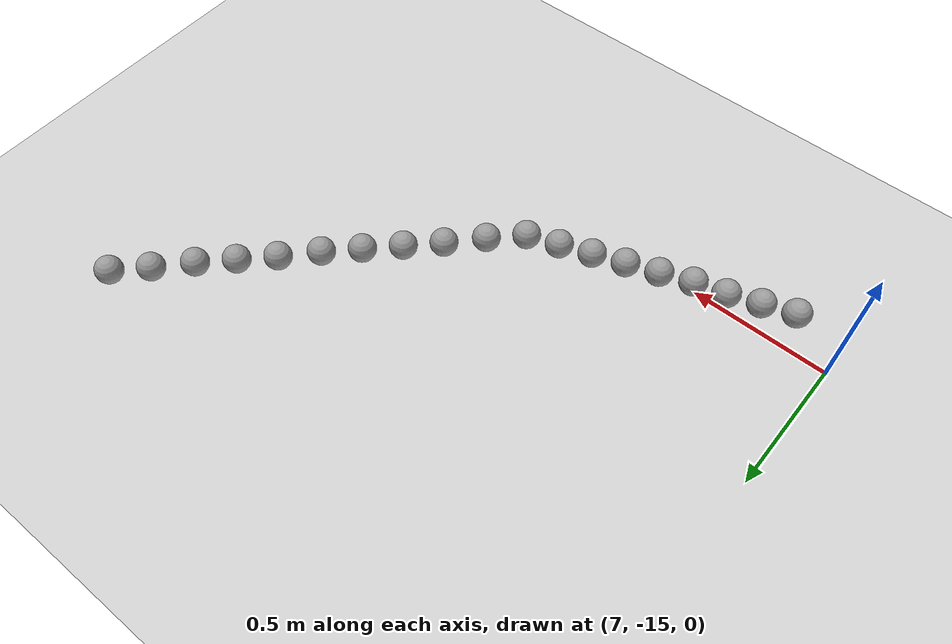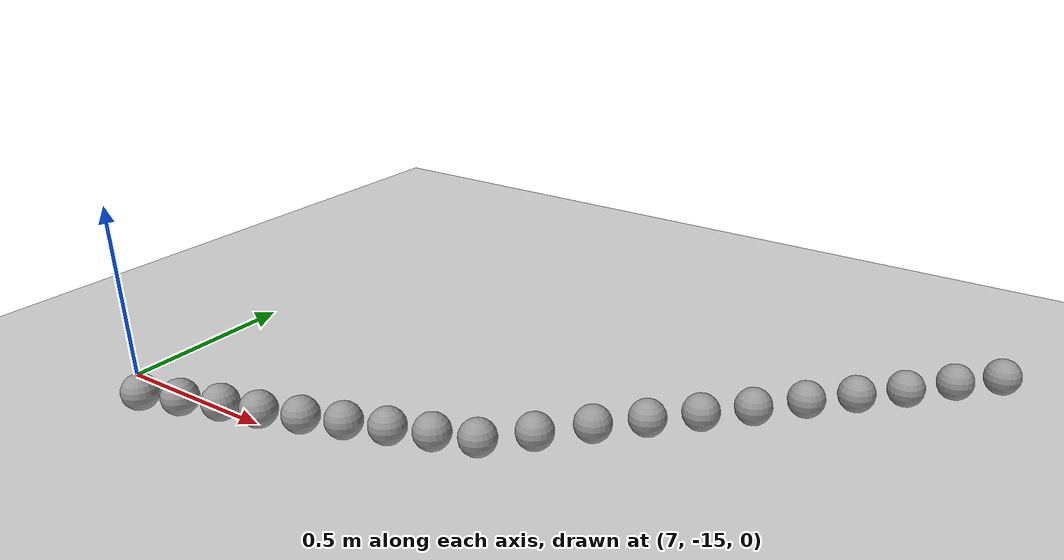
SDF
<sdf version="1.6">
 <world name="default">
  <model name="ground_plane">
   <static>1</static>
   <link name="link">
    <collision name="collision">
     <geometry><plane><normal>0 0 1</normal><size>100 100</size></plane></geometry>
     <surface><friction><ode><mu>100</mu><mu2>50</mu2></ode></friction></surface>
    </collision>
    <visual name="visual">
     <cast_shadows>0</cast_shadows>
     <geometry><plane><normal>0 0 1</normal><size>100 100</size></plane></geometry>
     <material>
      <script><uri>file://media/materials/scripts/gazebo.material</uri><name>Gazebo/Grey</name></script>
     </material>
    </visual>
   </link>
  </model>
  <model name="unit_sphere_0_520">
   <pose>9.070000 -13.770000 0.050000 0 -0 0</pose>
   <link name="link">
    <inertial>
     <mass>1</mass>
     <inertia><ixx>0.1</ixx><ixy>0</ixy><ixz>0</ixz><iyy>0.1</iyy><iyz>0</iyz><izz>0.1</izz></inertia>
    </inertial>
    <collision name="collision"><geometry><sphere><radius>0.050000</radius></sphere></geometry></collision>
    <visual name="visual">
     <geometry><sphere><radius>0.050000</radius></sphere></geometry>
     <material>
      <script><name>Gazebo/Grey</name><uri>file://media/materials/scripts/gazebo.material</uri></script>
     </material>
    </visual>
   </link>
  </model>
  <model name="unit_sphere_0_521">
   <pose>8.970000 -13.870000 0.050000 0 -0 0</pose>
   <link name="link">
    <inertial>
     <mass>1</mass>
     <inertia><ixx>0.1</ixx><ixy>0</ixy><ixz>0</ixz><iyy>0.1</iyy><iyz>0</iyz><izz>0.1</izz></inertia>
    </inertial>
    <collision name="collision"><geometry><sphere><radius>0.050000</radius></sphere></geometry></collision>
    <visual name="visual">
     <geometry><sphere><radius>0.050000</radius></sphere></geometry>
     <material>
      <script><name>Gazebo/Grey</name><uri>file://media/materials/scripts/gazebo.material</uri></script>
     </material>
    </visual>
   </link>
  </model>
  <model name="unit_sphere_0_522">
   <pose>8.870000 -13.980000 0.050000 0 -0 0</pose>
   <link name="link">
    <inertial>
     <mass>1</mass>
     <inertia><ixx>0.1</ixx><ixy>0</ixy><ixz>0</ixz><iyy>0.1</iyy><iyz>0</iyz><izz>0.1</izz></inertia>
    </inertial>
    <collision name="collision"><geometry><sphere><radius>0.050000</radius></sphere></geometry></collision>
    <visual name="visual">
     <geometry><sphere><radius>0.050000</radius></sphere></geometry>
     <material>
      <script><name>Gazebo/Grey</name><uri>file://media/materials/scripts/gazebo.material</uri></script>
     </material>
    </visual>
   </link>
  </model>
  <model name="unit_sphere_0_523">
   <pose>8.770000 -14.080000 0.050000 0 -0 0</pose>
   <link name="link">
    <inertial>
     <mass>1</mass>
     <inertia><ixx>0.1</ixx><ixy>0</ixy><ixz>0</ixz><iyy>0.1</iyy><iyz>0</iyz><izz>0.1</izz></inertia>
    </inertial>
    <collision name="collision"><geometry><sphere><radius>0.050000</radius></sphere></geometry></collision>
    <visual name="visual">
     <geometry><sphere><radius>0.050000</radius></sphere></geometry>
     <material>
      <script><name>Gazebo/Grey</name><uri>file://media/materials/scripts/gazebo.material</uri></script>
     </material>
    </visual>
   </link>
  </model>
  <model name="unit_sphere_0_524">
   <pose>8.670000 -14.180000 0.050000 0 -0 0</pose>
   <link name="link">
    <inertial>
     <mass>1</mass>
     <inertia><ixx>0.1</ixx><ixy>0</ixy><ixz>0</ixz><iyy>0.1</iyy><iyz>0</iyz><izz>0.1</izz></inertia>
    </inertial>
    <collision name="collision"><geometry><sphere><radius>0.050000</radius></sphere></geometry></collision>
    <visual name="visual">
     <geometry><sphere><radius>0.050000</radius></sphere></geometry>
     <material>
      <script><name>Gazebo/Grey</name><uri>file://media/materials/scripts/gazebo.material</uri></script>
     </material>
    </visual>
   </link>
  </model>
  <model name="unit_sphere_0_525">
   <pose>8.570000 -14.290000 0.050000 0 -0 0</pose>
   <link name="link">
    <inertial>
     <mass>1</mass>
     <inertia><ixx>0.1</ixx><ixy>0</ixy><ixz>0</ixz><iyy>0.1</iyy><iyz>0</iyz><izz>0.1</izz></inertia>
    </inertial>
    <collision name="collision"><geometry><sphere><radius>0.050000</radius></sphere></geometry></collision>
    <visual name="visual">
     <geometry><sphere><radius>0.050000</radius></sphere></geometry>
     <material>
      <script><name>Gazebo/Grey</name><uri>file://media/materials/scripts/gazebo.material</uri></script>
     </material>
    </visual>
   </link>
  </model>
  <model name="unit_sphere_0_526">
   <pose>8.470000 -14.390000 0.050000 0 -0 0</pose>
   <link name="link">
    <inertial>
     <mass>1</mass>
     <inertia><ixx>0.1</ixx><ixy>0</ixy><ixz>0</ixz><iyy>0.1</iyy><iyz>0</iyz><izz>0.1</izz></inertia>
    </inertial>
    <collision name="collision"><geometry><sphere><radius>0.050000</radius></sphere></geometry></collision>
    <visual name="visual">
     <geometry><sphere><radius>0.050000</radius></sphere></geometry>
     <material>
      <script><name>Gazebo/Grey</name><uri>file://media/materials/scripts/gazebo.material</uri></script>
     </material>
    </visual>
   </link>
  </model>
  <model name="unit_sphere_0_527">
   <pose>8.370000 -14.490000 0.050000 0 -0 0</pose>
   <link name="link">
    <inertial>
     <mass>1</mass>
     <inertia><ixx>0.1</ixx><ixy>0</ixy><ixz>0</ixz><iyy>0.1</iyy><iyz>0</iyz><izz>0.1</izz></inertia>
    </inertial>
    <collision name="collision"><geometry><sphere><radius>0.050000</radius></sphere></geometry></collision>
    <visual name="visual">
     <geometry><sphere><radius>0.050000</radius></sphere></geometry>
     <material>
      <script><name>Gazebo/Grey</name><uri>file://media/materials/scripts/gazebo.material</uri></script>
     </material>
    </visual>
   </link>
  </model>
  <model name="unit_sphere_0_528">
   <pose>8.270000 -14.590000 0.050000 0 -0 0</pose>
   <link name="link">
    <inertial>
     <mass>1</mass>
     <inertia><ixx>0.1</ixx><ixy>0</ixy><ixz>0</ixz><iyy>0.1</iyy><iyz>0</iyz><izz>0.1</izz></inertia>
    </inertial>
    <collision name="collision"><geometry><sphere><radius>0.050000</radius></sphere></geometry></collision>
    <visual name="visual">
     <geometry><sphere><radius>0.050000</radius></sphere></geometry>
     <material>
      <script><name>Gazebo/Grey</name><uri>file://media/materials/scripts/gazebo.material</uri></script>
     </material>
    </visual>
   </link>
  </model>
  <model name="unit_sphere_0_529">
   <pose>8.170000 -14.700000 0.050000 0 -0 0</pose>
   <link name="link">
    <inertial>
     <mass>1</mass>
     <inertia><ixx>0.1</ixx><ixy>0</ixy><ixz>0</ixz><iyy>0.1</iyy><iyz>0</iyz><izz>0.1</izz></inertia>
    </inertial>
    <collision name="collision"><geometry><sphere><radius>0.050000</radius></sphere></geometry></collision>
    <visual name="visual">
     <geometry><sphere><radius>0.050000</radius></sphere></geometry>
     <material>
      <script><name>Gazebo/Grey</name><uri>file://media/materials/scripts/gazebo.material</uri></script>
     </material>
    </visual>
   </link>
  </model>
  <model name="unit_sphere_0_530">
   <pose>8.070000 -14.800000 0.050000 0 -0 0</pose>
   <link name="link">
    <inertial>
     <mass>1</mass>
     <inertia><ixx>0.1</ixx><ixy>0</ixy><ixz>0</ixz><iyy>0.1</iyy><iyz>0</iyz><izz>0.1</izz></inertia>
    </inertial>
    <collision name="collision"><geometry><sphere><radius>0.050000</radius></sphere></geometry></collision>
    <visual name="visual">
     <geometry><sphere><radius>0.050000</radius></sphere></geometry>
     <material>
      <script><name>Gazebo/Grey</name><uri>file://media/materials/scripts/gazebo.material</uri></script>
     </material>
    </visual>
   </link>
  </model>
  <model name="unit_sphere_0_531">
   <pose>7.959000 -14.840000 0.050000 0 -0 0</pose>
   <link name="link">
    <inertial>
     <mass>1</mass>
     <inertia><ixx>0.1</ixx><ixy>0</ixy><ixz>0</ixz><iyy>0.1</iyy><iyz>0</iyz><izz>0.1</izz></inertia>
    </inertial>
    <collision name="collision"><geometry><sphere><radius>0.050000</radius></sphere></geometry></collision>
    <visual name="visual">
     <geometry><sphere><radius>0.050000</radius></sphere></geometry>
     <material>
      <script><name>Gazebo/Grey</name><uri>file://media/materials/scripts/gazebo.material</uri></script>
     </material>
    </visual>
   </link>
  </model>
  <model name="unit_sphere_0_532">
   <pose>7.848000 -14.880000 0.050000 0 -0 0</pose>
   <link name="link">
    <inertial>
     <mass>1</mass>
     <inertia><ixx>0.1</ixx><ixy>0</ixy><ixz>0</ixz><iyy>0.1</iyy><iyz>0</iyz><izz>0.1</izz></inertia>
    </inertial>
    <collision name="collision"><geometry><sphere><radius>0.050000</radius></sphere></geometry></collision>
    <visual name="visual">
     <geometry><sphere><radius>0.050000</radius></sphere></geometry>
     <material>
      <script><name>Gazebo/Grey</name><uri>file://media/materials/scripts/gazebo.material</uri></script>
     </material>
    </visual>
   </link>
  </model>
  <model name="unit_sphere_0_533">
   <pose>7.737000 -14.920000 0.050000 0 -0 0</pose>
   <link name="link">
    <inertial>
     <mass>1</mass>
     <inertia><ixx>0.1</ixx><ixy>0</ixy><ixz>0</ixz><iyy>0.1</iyy><iyz>0</iyz><izz>0.1</izz></inertia>
    </inertial>
    <collision name="collision"><geometry><sphere><radius>0.050000</radius></sphere></geometry></collision>
    <visual name="visual">
     <geometry><sphere><radius>0.050000</radius></sphere></geometry>
     <material>
      <script><name>Gazebo/Grey</name><uri>file://media/materials/scripts/gazebo.material</uri></script>
     </material>
    </visual>
   </link>
  </model>
  <model name="unit_sphere_0_534">
   <pose>7.626000 -14.960000 0.050000 0 -0 0</pose>
   <link name="link">
    <inertial>
     <mass>1</mass>
     <inertia><ixx>0.1</ixx><ixy>0</ixy><ixz>0</ixz><iyy>0.1</iyy><iyz>0</iyz><izz>0.1</izz></inertia>
    </inertial>
    <collision name="collision"><geometry><sphere><radius>0.050000</radius></sphere></geometry></collision>
    <visual name="visual">
     <geometry><sphere><radius>0.050000</radius></sphere></geometry>
     <material>
      <script><name>Gazebo/Grey</name><uri>file://media/materials/scripts/gazebo.material</uri></script>
     </material>
    </visual>
   </link>
  </model>
  <model name="unit_sphere_0_535">
   <pose>7.515000 -15.000000 0.050000 0 -0 0</pose>
   <link name="link">
    <inertial>
     <mass>1</mass>
     <inertia><ixx>0.1</ixx><ixy>0</ixy><ixz>0</ixz><iyy>0.1</iyy><iyz>0</iyz><izz>0.1</izz></inertia>
    </inertial>
    <collision name="collision"><geometry><sphere><radius>0.050000</radius></sphere></geometry></collision>
    <visual name="visual">
     <geometry><sphere><radius>0.050000</radius></sphere></geometry>
     <material>
      <script><name>Gazebo/Grey</name><uri>file://media/materials/scripts/gazebo.material</uri></script>
     </material>
    </visual>
   </link>
  </model>
  <model name="unit_sphere_0_536">
   <pose>7.404000 -15.030000 0.050000 0 -0 0</pose>
   <link name="link">
    <inertial>
     <mass>1</mass>
     <inertia><ixx>0.1</ixx><ixy>0</ixy><ixz>0</ixz><iyy>0.1</iyy><iyz>0</iyz><izz>0.1</izz></inertia>
    </inertial>
    <collision name="collision"><geometry><sphere><radius>0.050000</radius></sphere></geometry></collision>
    <visual name="visual">
     <geometry><sphere><radius>0.050000</radius></sphere></geometry>
     <material>
      <script><name>Gazebo/Grey</name><uri>file://media/materials/scripts/gazebo.material</uri></script>
     </material>
    </visual>
   </link>
  </model>
  <model name="unit_sphere_0_537">
   <pose>7.293000 -15.070000 0.050000 0 -0 0</pose>
   <link name="link">
    <inertial>
     <mass>1</mass>
     <inertia><ixx>0.1</ixx><ixy>0</ixy><ixz>0</ixz><iyy>0.1</iyy><iyz>0</iyz><izz>0.1</izz></inertia>
    </inertial>
    <collision name="collision"><geometry><sphere><radius>0.050000</radius></sphere></geometry></collision>
    <visual name="visual">
     <geometry><sphere><radius>0.050000</radius></sphere></geometry>
     <material>
      <script><name>Gazebo/Grey</name><uri>file://media/materials/scripts/gazebo.material</uri></script>
     </material>
    </visual>
   </link>
  </model>
  <model name="unit_sphere_0_538">
   <pose>7.182000 -15.110000 0.050000 0 -0 0</pose>
   <link name="link">
    <inertial>
     <mass>1</mass>
     <inertia><ixx>0.1</ixx><ixy>0</ixy><ixz>0</ixz><iyy>0.1</iyy><iyz>0</iyz><izz>0.1</izz></inertia>
    </inertial>
    <collision name="collision"><geometry><sphere><radius>0.050000</radius></sphere></geometry></collision>
    <visual name="visual">
     <geometry><sphere><radius>0.050000</radius></sphere></geometry>
     <material>
      <script><name>Gazebo/Grey</name><uri>file://media/materials/scripts/gazebo.material</uri></script>
     </material>
    </visual>
   </link>
  </model>
 </world>
</sdf>
